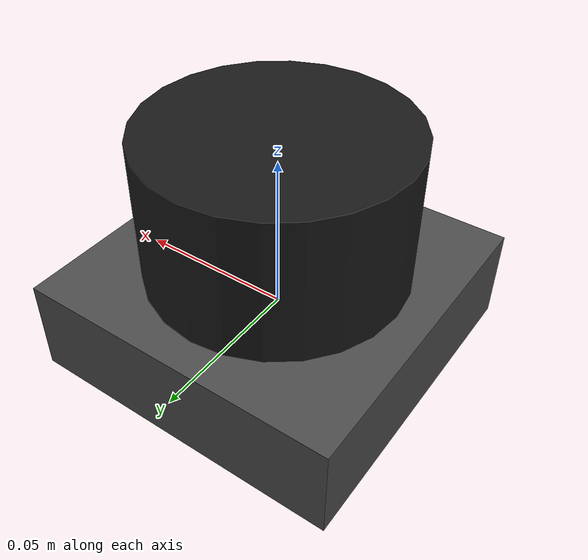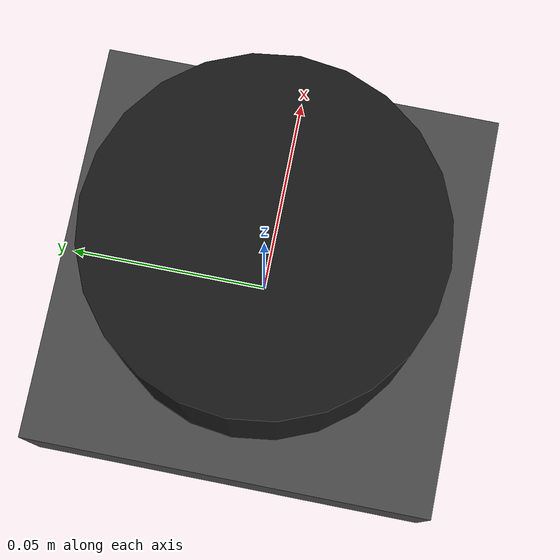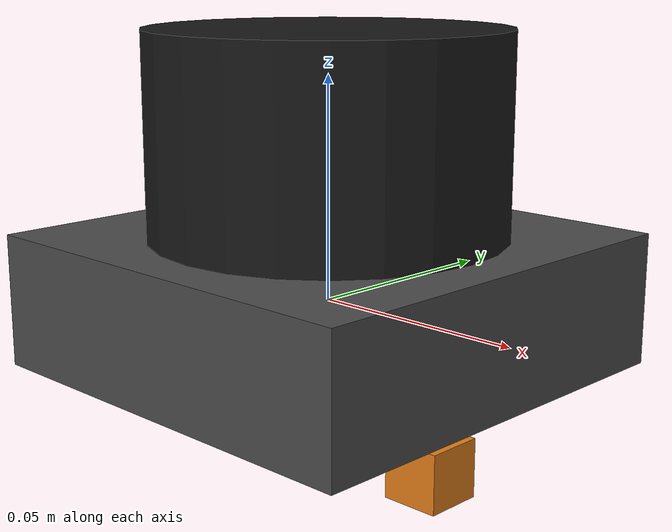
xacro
<?xml version="1.0"?>

<robot
  xmlns:xacro="http://www.ros.org/wiki/xacro"
  name="farm_sensor_rig">

  <!--
    true:
      URDF 發布 livox_frame -> livox_imu

    false:
      由 Livox Driver 或其他節點發布
  -->
  <xacro:arg
    name="publish_livox_imu_tf"
    default="true"/>

  <!--
    true:
      URDF 發布 camera_link -> camera_color_optical_frame

    false:
      由 RealSense Driver 或其他 Camera Driver 發布
  -->
  <xacro:arg
    name="publish_camera_optical_tf"
    default="false"/>

  <!-- 外參集中放在此檔案 -->
  <xacro:include filename="sensor_extrinsics.xacro"/>

  <!-- Base link                                                 -->

  <link name="${base_frame}">

    <visual>
      <origin xyz="0 0 0" rpy="0 0 0"/>

      <geometry>
        <box size="0.10 0.10 0.03"/>
      </geometry>

      <material name="base_material">
        <color rgba="0.3 0.3 0.3 1.0"/>
      </material>
    </visual>

  </link>

  <!-- MID-360 LiDAR                                             -->

  <link name="${lidar_frame}">

    <visual>
      <origin xyz="0 0 0.03" rpy="0 0 0"/>

      <geometry>
        <cylinder radius="0.04" length="0.06"/>
      </geometry>

      <material name="lidar_material">
        <color rgba="0.1 0.1 0.1 1.0"/>
      </material>
    </visual>

  </link>

  <joint name="base_to_livox_joint" type="fixed">

    <parent link="${base_frame}"/>
    <child link="${lidar_frame}"/>

    <origin
      xyz="${base_to_lidar_xyz}"
      rpy="${base_to_lidar_rpy}"/>

  </joint>

  <!-- MID-360 internal IMU                                      -->

  <xacro:if value="$(arg publish_livox_imu_tf)">

    <link name="${imu_frame}">

      <visual>
        <origin xyz="0 0 0" rpy="0 0 0"/>

        <geometry>
          <box size="0.015 0.015 0.015"/>
        </geometry>

        <material name="imu_material">
          <color rgba="0.9 0.5 0.1 1.0"/>
        </material>
      </visual>

    </link>

    <joint name="livox_to_imu_joint" type="fixed">

      <parent link="${lidar_frame}"/>
      <child link="${imu_frame}"/>

      <origin
        xyz="${lidar_to_imu_xyz}"
        rpy="${lidar_to_imu_rpy}"/>

    </joint>

  </xacro:if>

  <!-- Camera                                                    -->

  <link name="${camera_frame}">

    <visual>
      <origin xyz="0 0 0" rpy="0 0 0"/>

      <geometry>
        <box size="0.09 0.025 0.025"/>
      </geometry>

      <material name="camera_material">
        <color rgba="0.1 0.2 0.8 1.0"/>
      </material>
    </visual>

  </link>

  <joint name="base_to_camera_joint" type="fixed">

    <parent link="${base_frame}"/>
    <child link="${camera_frame}"/>

    <origin
      xyz="${base_to_camera_xyz}"
      rpy="${base_to_camera_rpy}"/>

  </joint>

  <!-- Generic camera optical frame                              -->
  <!-- RealSense Driver 有發布 TF 時，請保持 false               -->

  <xacro:if value="$(arg publish_camera_optical_tf)">

    <link name="${camera_optical_frame}"/>

    <joint name="camera_to_optical_joint" type="fixed">

      <parent link="${camera_frame}"/>
      <child link="${camera_optical_frame}"/>

      <!--
        ROS Camera optical convention:

        optical Z: forward
        optical X: right
        optical Y: down
      -->
      <origin
        xyz="0 0 0"
        rpy="-1.57079632679 0 -1.57079632679"/>

    </joint>

  </xacro:if>

</robot>

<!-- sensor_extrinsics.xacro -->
<robot xmlns:xacro="http://www.ros.org/wiki/xacro">

  <!-- Frame names                                               -->

  <xacro:property name="base_frame"
                  value="base_link"/>

  <xacro:property name="lidar_frame"
                  value="livox_frame"/>

  <xacro:property name="imu_frame"
                  value="livox_imu"/>

  <xacro:property name="camera_frame"
                  value="camera_link"/>

  <xacro:property name="camera_optical_frame"
                  value="camera_color_optical_frame"/>

  <!-- base_link -> MID-360                                      -->
  <!-- 修改這裡：MID-360 相對感測器平台原點的位置                 -->
  <!-- xyz 單位：公尺                                             -->
  <!-- rpy 單位：弧度                                             -->

  <xacro:property name="base_to_lidar_xyz"
                  value="0.0 0.0 0.0"/>

  <xacro:property name="base_to_lidar_rpy"
                  value="0.0 0.0 0.0"/>

  <!-- MID-360 LiDAR -> MID-360 internal IMU                     -->
  <!-- MID-360 初始參考值                                        -->
  <!-- 請配合 GLIM 的 T_lidar_imu 驗證                            -->

  <xacro:property name="lidar_to_imu_xyz"
                  value="0.011 0.02329 -0.04412"/>

  <xacro:property name="lidar_to_imu_rpy"
                  value="0.0 0.0 0.0"/>

  <!-- base_link -> Camera                                       -->
  <!-- 修改這裡：相機相對感測器平台原點的位置                    -->
  <!-- 目前全部設為 0，只是格式範本                               -->

  <xacro:property name="base_to_camera_xyz"
                  value="0.0 0.0 0.0"/>

  <xacro:property name="base_to_camera_rpy"
                  value="0.0 0.0 0.0"/>

</robot>
